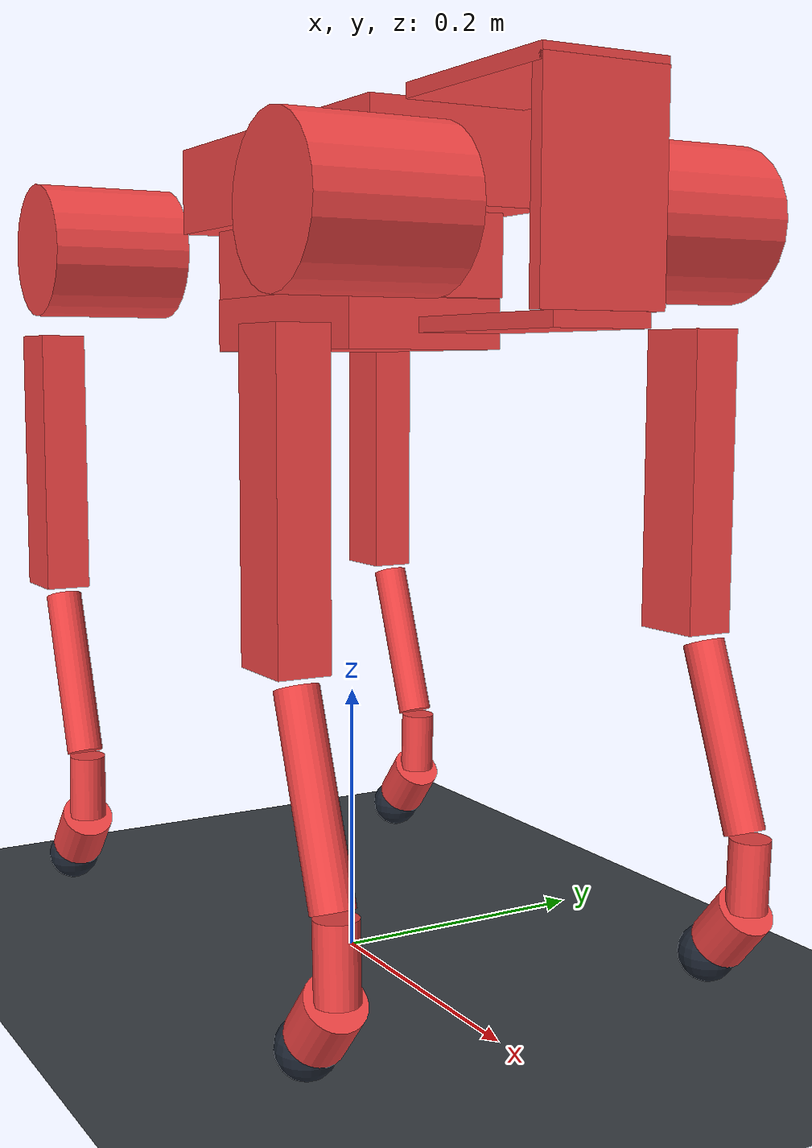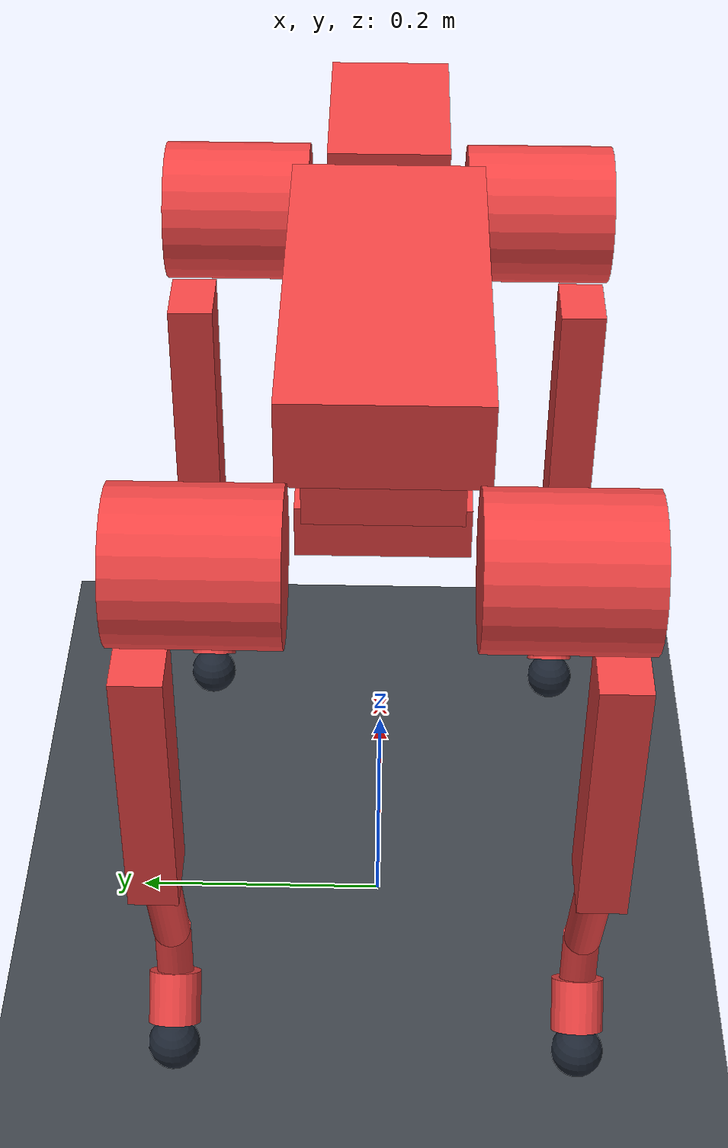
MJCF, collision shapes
<mujoco model="GO 2026_4_12">
  <compiler angle="radian" meshdir="meshes/" inertiafromgeom="auto" inertiagrouprange="3 3" />
  <!-- 高 kv(30/15) 在默认 Euler 积分 + 2 ms 步长下会数值发散(执行器力矩在 ±60 之间每步翻转)。
       用 implicitfast 隐式处理阻尼,即可在 2 ms 步长下稳定运行。等效替代方案: dt <= 1e-4。 -->
  <option integrator="implicitfast" timestep="0.002" />
  <asset>
    <mesh name="trunk" file="trunk.STL" />
    <mesh name="d435" file="d435.stl" />
    <mesh name="FL_hip" file="FL_hip.STL" />
    <mesh name="FL_thigh" file="FL_thigh.STL" />
    <mesh name="FL_calf" file="FL_calf.STL" />
    <mesh name="FR_hip" file="FR_hip.STL" />
    <mesh name="FR_thigh" file="FR_thigh.STL" />
    <mesh name="FR_calf" file="FR_calf.STL" />
    <mesh name="RR_hip" file="RR_hip.STL" />
    <mesh name="RR_thigh" file="RR_thigh.STL" />
    <mesh name="RR_calf" file="RR_calf.STL" />
    <mesh name="RL_hip" file="RL_hip.STL" />
    <mesh name="RL_thigh" file="RL_thigh.STL" />
    <mesh name="RL_calf" file="RL_calf.STL" />
    <material name="base_mat" rgba="0.502 0.502 0.502 1" specular="0" />
    <material name="trunk_mat" rgba="0.7529 0.7529 0.7529 1" specular="0" />
    <material name="imu_link_mat" rgba="0.8 0 0 1" specular="0" />
    <material name="d435_link_mat" rgba="0.15 0.15 0.15 1" specular="0" />
    <material name="FL_hip_mat" rgba="0.7529 0.7529 0.7529 1" specular="0" />
    <material name="FL_thigh_mat" rgba="0.7529 0.7529 0.7529 1" specular="0" />
    <material name="FL_calf_mat" rgba="0.7529 0.7529 0.7529 1" specular="0" />
    <material name="FL_foot_mat" rgba="0.1177 0.149 0.2 1" specular="0" />
    <material name="FR_hip_mat" rgba="0.7529 0.7529 0.7529 1" specular="0" />
    <material name="FR_thigh_mat" rgba="0.7529 0.7529 0.7529 1" specular="0" />
    <material name="FR_calf_mat" rgba="0.7529 0.7529 0.7529 1" specular="0" />
    <material name="FR_foot_mat" rgba="0.1177 0.149 0.2 1" specular="0" />
    <material name="RR_hip_mat" rgba="0.7529 0.7529 0.7529 1" specular="0" />
    <material name="RR_thigh_mat" rgba="0.7529 0.7529 0.7529 1" specular="0" />
    <material name="RR_calf_mat" rgba="0.7529 0.7529 0.7529 1" specular="0" />
    <material name="RR_foot_mat" rgba="0.1177 0.149 0.2 1" specular="0" />
    <material name="RL_hip_mat" rgba="0.7529 0.7529 0.7529 1" specular="0" />
    <material name="RL_thigh_mat" rgba="0.7529 0.7529 0.7529 1" specular="0" />
    <material name="RL_calf_mat" rgba="0.7529 0.7529 0.7529 1" specular="0" />
    <material name="RL_foot_mat" rgba="0.1177 0.149 0.2 1" specular="0" />
    <!-- 场景: 天空盒 + 地面棋盘格纹理与材质(均为内置程序化纹理, 不依赖文件) -->
    <texture name="skybox" type="skybox" builtin="gradient" width="100" height="100" rgb1="0.4 0.6 0.8" rgb2="0.2 0.2 0.2" />
    <texture name="groundplane_tex" type="2d" builtin="checker" width="512" height="512" rgb1="0.28 0.3 0.33" rgb2="0.2 0.22 0.24" mark="random" markrgb="0.8 0.8 0.8" />
    <material name="groundplane_mat" texture="groundplane_tex" texuniform="true" texrepeat="4 4" reflectance="0.2" />
  </asset>

  <worldbody>
    <!-- 地面(无限大平面, z=0) -->
    <geom name="floor" type="plane" pos="0 0 0" size="0 0 0.05" material="groundplane_mat" condim="3" friction="1 0.005 0.0001" />
    <!-- 光照: 主平行光带阴影 + 补光 -->
    <light name="key_light" directional="true" pos="0 0 3" dir="-0.3 0.2 -1" diffuse="0.8 0.8 0.8" specular="0.2 0.2 0.2" castshadow="true" />
    <light name="fill_light" directional="true" pos="0 0 3" dir="0.4 -0.3 -1" diffuse="0.3 0.3 0.3" specular="0.1 0.1 0.1" castshadow="false" />
    <body name="base" pos="0 0 0.6">
      <freejoint/>
      <!-- Estimated inertia from collisions; density 1000 kg/m3. -->
      <geom pos="0 0 0" group="1" contype="0" conaffinity="0" mass="0" material="base_mat" type="box" size="0.0005 0.0005 0.0005" />
      <geom pos="0 0 0" rgba="0.9373 0.2667 0.2667 1" group="3" contype="1" conaffinity="1" density="1000" type="box" size="0.0000005 0.0000005 0.0000005" />
      <body name="trunk" pos="0 0 0">
        <inertial pos="-0.013095 -0.00005 -0.074252" mass="5.7042" fullinertia="0.0092853 0.0076386 0.012703 -0.0000026 0.0000017 -0.0000276"/>
        <geom pos="0 0 0" group="1" contype="0" conaffinity="0" mass="0" material="trunk_mat" type="mesh" mesh="trunk" />
        <geom pos="0 0 -0.02" rgba="0.9373 0.2667 0.2667 1" group="3" contype="1" conaffinity="1" type="box" size="0.15 0.07 0.0325" />
        <geom pos="0 0 -0.08" rgba="0.9373 0.2667 0.2667 1" group="3" contype="1" conaffinity="1" type="box" size="0.115 0.055 0.03" />
        <geom pos="0 0 -0.125" rgba="0.9373 0.2667 0.2667 1" group="3" contype="1" conaffinity="1" type="box" size="0.105 0.06 0.02" />
        <geom pos="0.225 0 -0.13" rgba="0.9373 0.2667 0.2667 1" group="3" contype="1" conaffinity="1" type="box" size="0.0725 0.035 0.005" />
        <geom pos="0.225 0 0.015" rgba="0.9373 0.2667 0.2667 1" group="3" contype="1" conaffinity="1" type="box" size="0.0725 0.045 0.005" />
        <geom pos="0.293 0 -0.055" rgba="0.9373 0.2667 0.2667 1" group="3" contype="1" conaffinity="1" type="box" size="0.005 0.045 0.07" />
        <body name="imu_link" pos="0 0 0">
          <inertial pos="0 0 0" mass="0.001" diaginertia="0.0001 0.0001 0.0001"/>
          <geom pos="0 0 0" group="1" contype="0" conaffinity="0" material="imu_link_mat" type="box" size="0.0005 0.0005 0.0005" />
        </body>
        <body name="d435_link" pos="0.225 0 0.028">
          <inertial pos="0 0 -0.0125" mass="0.072" diaginertia="0.00002 0.00006 0.00006"/>
          <geom pos="0.07 0 -0.08" quat="0.3155095 0.6328142 0.6328142 0.3155095" group="1" contype="0" conaffinity="0" material="d435_link_mat" type="mesh" mesh="d435" />
        </body>
        <body name="FL_hip" pos="0.1566 0.060001 -0.06425">
          <joint name="FL_hip_joint" type="hinge" axis="1 0 0" damping="0.15" frictionloss="0"/>
          <inertial pos="0.05138 0.014784 0.0000566" mass="0.60559" fullinertia="0.0003742 0.0006493 0.0003415 -0.0000088 0.000001 -0.0000001"/>
          <geom pos="0 0 0" group="1" contype="0" conaffinity="0" mass="0" material="FL_hip_mat" type="mesh" mesh="FL_hip" />
          <geom pos="0.058 0.055 0" quat="0.7071068 0.7071068 0 0" rgba="0.9373 0.2667 0.2667 1" group="3" contype="1" conaffinity="1" type="cylinder" size="0.052 0.055" />
          <body name="FL_thigh" pos="0.056 0.0336 0" quat="0.7071055 0 0 0.7071081">
            <joint name="FL_thigh_joint" type="hinge" axis="1 0 0" damping="0.15" frictionloss="0"/>
            <inertial pos="0.041449 0.004453 -0.021946" mass="0.91168" fullinertia="0.0018577 0.0013983 0.0005179 0 -0.0000002 0.0000051"/>
            <geom pos="0 0 0" group="1" contype="0" conaffinity="0" mass="0" material="FL_thigh_mat" type="mesh" mesh="FL_thigh" />
            <geom pos="0.06 0.015 -0.17" rgba="0.9373 0.2667 0.2667 1" group="3" contype="1" conaffinity="1" type="box" size="0.0175 0.025 0.1025" />
            <body name="FL_calf" pos="0.0618 0 -0.25">
              <joint name="FL_calf_joint" type="hinge" axis="1 0 0" damping="0.15" frictionloss="0"/>
              <inertial pos="0.0000772 -0.024754 -0.14833" mass="0.24861" fullinertia="0.000929 0.0008561 0.0000889 0 0 -0.0002168"/>
              <geom pos="0 0 0" group="1" contype="0" conaffinity="0" mass="0" material="FL_calf_mat" type="mesh" mesh="FL_calf" />
              <geom pos="0 -0.025 -0.09" quat="0.9843036 -0.1764835 0 0" rgba="0.9373 0.2667 0.2667 1" group="3" contype="1" conaffinity="1" type="cylinder" size="0.014 0.065" />
              <geom pos="0 -0.052 -0.178" quat="0.9998507 0.0172779 0 0" rgba="0.9373 0.2667 0.2667 1" group="3" contype="1" conaffinity="1" type="cylinder" size="0.014 0.025" />
              <geom pos="0 -0.038 -0.218" quat="0.9396926 0.3420201 0 0" rgba="0.9373 0.2667 0.2667 1" group="3" contype="1" conaffinity="1" type="cylinder" size="0.02 0.02" />
              <body name="FL_foot" pos="0 -0.013803 -0.24433">
                <inertial pos="0 0 0" mass="0.1" diaginertia="0.000016 0.000016 0.000016"/>
                <geom pos="0 0 0" group="1" contype="0" conaffinity="0" mass="0" material="FL_foot_mat" type="sphere" size="0.02" />
                <geom pos="0 0 0" rgba="0.9373 0.2667 0.2667 1" group="3" contype="1" conaffinity="1" type="sphere" size="0.02" />
              </body>
            </body>
          </body>
        </body>
        <body name="FR_hip" pos="0.1566 -0.059999 -0.06425">
          <joint name="FR_hip_joint" type="hinge" axis="1 0 0" damping="0.15" frictionloss="0"/>
          <inertial pos="0.05138 -0.014784 -0.0000566" mass="0.60559" fullinertia="0.0003742 0.0006493 0.0003415 0.0000088 -0.000001 -0.0000001"/>
          <geom pos="0 0 0" group="1" contype="0" conaffinity="0" mass="0" material="FR_hip_mat" type="mesh" mesh="FR_hip" />
          <geom pos="0.058 -0.055 0" quat="0.7071068 0.7071068 0 0" rgba="0.9373 0.2667 0.2667 1" group="3" contype="1" conaffinity="1" type="cylinder" size="0.052 0.055" />
          <body name="FR_thigh" pos="0.056 -0.0336 0" quat="0.7071055 0 0 -0.7071081">
            <joint name="FR_thigh_joint" type="hinge" axis="1 0 0" damping="0.15" frictionloss="0"/>
            <inertial pos="0.04152 -0.0043781 -0.022024" mass="0.91491" fullinertia="0.0018577 0.0013991 0.0005172 -0.0000001 -0.0000002 -0.0000031"/>
            <geom pos="0 0 0" group="1" contype="0" conaffinity="0" mass="0" material="FR_thigh_mat" type="mesh" mesh="FR_thigh" />
            <geom pos="0.06 -0.015 -0.17" rgba="0.9373 0.2667 0.2667 1" group="3" contype="1" conaffinity="1" type="box" size="0.0175 0.025 0.1025" />
            <body name="FR_calf" pos="0.0618 0 -0.25">
              <joint name="FR_calf_joint" type="hinge" axis="1 0 0" damping="0.15" frictionloss="0"/>
              <inertial pos="-0.0000772 0.024754 -0.14833" mass="0.24861" fullinertia="0.000929 0.0008561 0.0000889 0 0 0.0002168"/>
              <geom pos="0 0 0" group="1" contype="0" conaffinity="0" mass="0" material="FR_calf_mat" type="mesh" mesh="FR_calf" />
              <geom pos="0 0.025 -0.09" quat="0.9843036 0.1764835 0 0" rgba="0.9373 0.2667 0.2667 1" group="3" contype="1" conaffinity="1" type="cylinder" size="0.014 0.065" />
              <geom pos="0 0.052 -0.178" quat="0.9998507 0.0172779 0 0" rgba="0.9373 0.2667 0.2667 1" group="3" contype="1" conaffinity="1" type="cylinder" size="0.014 0.025" />
              <geom pos="0 0.038 -0.218" quat="0.9396926 -0.3420201 0 0" rgba="0.9373 0.2667 0.2667 1" group="3" contype="1" conaffinity="1" type="cylinder" size="0.02 0.02" />
              <body name="FR_foot" pos="0 0.013803 -0.24433">
                <inertial pos="0 0 0" mass="0.1" diaginertia="0.000016 0.000016 0.000016"/>
                <geom pos="0 0 0" group="1" contype="0" conaffinity="0" mass="0" material="FR_foot_mat" type="sphere" size="0.02" />
                <geom pos="0 0 0" rgba="0.9373 0.2667 0.2667 1" group="3" contype="1" conaffinity="1" type="sphere" size="0.02" />
              </body>
            </body>
          </body>
        </body>
        <body name="RR_hip" pos="-0.1566 -0.059999 -0.06425" quat="-0.0000037 0 0 -1">
          <joint name="RR_hip_joint" type="hinge" axis="1 0 0" damping="0.15" frictionloss="0"/>
          <inertial pos="0.05138 0.014784 0.0000566" mass="0.60559" fullinertia="0.0003742 0.0006493 0.0003415 -0.0000088 0.000001 -0.0000001"/>
          <geom pos="0 0 0" group="1" contype="0" conaffinity="0" mass="0" material="RR_hip_mat" type="mesh" mesh="RR_hip" />
          <geom pos="0.058 0.055 0" quat="0.7071068 0.7071068 0 0" rgba="0.9373 0.2667 0.2667 1" group="3" contype="1" conaffinity="1" type="cylinder" size="0.052 0.055" />
          <body name="RR_thigh" pos="0.056 0.0336 0" quat="0.7071055 0 0 0.7071081">
            <joint name="RR_thigh_joint" type="hinge" axis="1 0 0" damping="0.15" frictionloss="0"/>
            <inertial pos="0.04152 -0.0043784 -0.022024" mass="0.91491" fullinertia="0.0018577 0.0013991 0.0005172 -0.0000001 -0.0000002 -0.0000031"/>
            <geom pos="0 0 0" group="1" contype="0" conaffinity="0" mass="0" material="RR_thigh_mat" type="mesh" mesh="RR_thigh" />
            <geom pos="0.06 -0.015 -0.17" rgba="0.9373 0.2667 0.2667 1" group="3" contype="1" conaffinity="1" type="box" size="0.0175 0.025 0.1025" />
            <body name="RR_calf" pos="0.0618 0 -0.25">
              <joint name="RR_calf_joint" type="hinge" axis="1 0 0" damping="0.15" frictionloss="0"/>
              <inertial pos="-0.0000772 0.024754 -0.14833" mass="0.24861" fullinertia="0.000929 0.0008561 0.0000889 0 0 0.0002168"/>
              <geom pos="0 0 0" group="1" contype="0" conaffinity="0" mass="0" material="RR_calf_mat" type="mesh" mesh="RR_calf" />
              <geom pos="0 0.025 -0.09" quat="0.9843036 0.1764835 0 0" rgba="0.9373 0.2667 0.2667 1" group="3" contype="1" conaffinity="1" type="cylinder" size="0.014 0.065" />
              <geom pos="0 0.052 -0.178" quat="0.9998507 -0.0172779 0 0" rgba="0.9373 0.2667 0.2667 1" group="3" contype="1" conaffinity="1" type="cylinder" size="0.014 0.025" />
              <geom pos="0 0.038 -0.218" quat="0.9396926 -0.3420201 0 0" rgba="0.9373 0.2667 0.2667 1" group="3" contype="1" conaffinity="1" type="cylinder" size="0.02 0.02" />
              <body name="RR_foot" pos="0 0.013803 -0.24433">
                <inertial pos="0 0 0" mass="0.1" diaginertia="0.000016 0.000016 0.000016"/>
                <geom pos="0 0 0" group="1" contype="0" conaffinity="0" mass="0" material="RR_foot_mat" type="sphere" size="0.02" />
                <geom pos="0 0 0" rgba="0.9373 0.2667 0.2667 1" group="3" contype="1" conaffinity="1" type="sphere" size="0.02" />
              </body>
            </body>
          </body>
        </body>
        <body name="RL_hip" pos="-0.1566 0.060001 -0.06425" quat="-0.0000037 0 0 -1">
          <joint name="RL_hip_joint" type="hinge" axis="1 0 0" damping="0.15" frictionloss="0"/>
          <inertial pos="0.05138 -0.014784 -0.0000566" mass="0.60559" fullinertia="0.0003742 0.0006493 0.0003415 0.0000088 -0.000001 -0.0000001"/>
          <geom pos="0 0 0" group="1" contype="0" conaffinity="0" mass="0" material="RL_hip_mat" type="mesh" mesh="RL_hip" />
          <geom pos="0.058 -0.055 0" quat="0.7071068 0.7071068 0 0" rgba="0.9373 0.2667 0.2667 1" group="3" contype="1" conaffinity="1" type="cylinder" size="0.052 0.055" />
          <body name="RL_thigh" pos="0.056 -0.0336 0" quat="0.7071055 0 0 -0.7071081">
            <joint name="RL_thigh_joint" type="hinge" axis="1 0 0" damping="0.15" frictionloss="0"/>
            <inertial pos="0.041449 0.0044527 -0.021947" mass="0.91168" fullinertia="0.0018577 0.0013983 0.0005179 0 -0.0000002 0.0000051"/>
            <geom pos="0 0 0" group="1" contype="0" conaffinity="0" mass="0" material="RL_thigh_mat" type="mesh" mesh="RL_thigh" />
            <geom pos="0.06 0.015 -0.17" rgba="0.9373 0.2667 0.2667 1" group="3" contype="1" conaffinity="1" type="box" size="0.0175 0.025 0.1025" />
            <body name="RL_calf" pos="0.0618 0 -0.25">
              <joint name="RL_calf_joint" type="hinge" axis="1 0 0" damping="0.15" frictionloss="0"/>
              <inertial pos="0.0000772 -0.024754 -0.14833" mass="0.24861" fullinertia="0.000929 0.0008561 0.0000889 0 0 -0.0002168"/>
              <geom pos="0 0 0" group="1" contype="0" conaffinity="0" mass="0" material="RL_calf_mat" type="mesh" mesh="RL_calf" />
              <geom pos="0 -0.025 -0.09" quat="0.9843036 -0.1764835 0 0" rgba="0.9373 0.2667 0.2667 1" group="3" contype="1" conaffinity="1" type="cylinder" size="0.014 0.065" />
              <geom pos="0 -0.052 -0.178" quat="0.9998507 0.0172779 0 0" rgba="0.9373 0.2667 0.2667 1" group="3" contype="1" conaffinity="1" type="cylinder" size="0.014 0.025" />
              <geom pos="0 -0.038 -0.218" quat="0.9396926 0.3420201 0 0" rgba="0.9373 0.2667 0.2667 1" group="3" contype="1" conaffinity="1" type="cylinder" size="0.02 0.02" />
              <body name="RL_foot" pos="0 -0.013803 -0.24433">
                <inertial pos="0 0 0" mass="0.1" diaginertia="0.000016 0.000016 0.000016"/>
                <geom pos="0 0 0" group="1" contype="0" conaffinity="0" mass="0" material="RL_foot_mat" type="sphere" size="0.02" />
                <geom pos="0 0 0" rgba="0.9373 0.2667 0.2667 1" group="3" contype="1" conaffinity="1" type="sphere" size="0.02" />
              </body>
            </body>
          </body>
        </body>
      </body>
    </body>
  </worldbody>
  <actuator>
    <position name="FL_hip_joint_servo" joint="FL_hip_joint" kp="100" kv="30" forcelimited="true" forcerange="-60 60" />
    <position name="FL_thigh_joint_servo" joint="FL_thigh_joint" kp="60" kv="15" forcelimited="true" forcerange="-60 60" />
    <position name="FL_calf_joint_servo" joint="FL_calf_joint" kp="60" kv="15" forcelimited="true" forcerange="-60 60" />
    <position name="FR_hip_joint_servo" joint="FR_hip_joint" kp="100" kv="30" forcelimited="true" forcerange="-60 60" />
    <position name="FR_thigh_joint_servo" joint="FR_thigh_joint" kp="60" kv="15" forcelimited="true" forcerange="-60 60" />
    <position name="FR_calf_joint_servo" joint="FR_calf_joint" kp="60" kv="15" forcelimited="true" forcerange="-60 60" />
    <position name="RR_hip_joint_servo" joint="RR_hip_joint" kp="100" kv="30" forcelimited="true" forcerange="-60 60" />
    <position name="RR_thigh_joint_servo" joint="RR_thigh_joint" kp="60" kv="15" forcelimited="true" forcerange="-60 60" />
    <position name="RR_calf_joint_servo" joint="RR_calf_joint" kp="60" kv="15" forcelimited="true" forcerange="-60 60" />
    <position name="RL_hip_joint_servo" joint="RL_hip_joint" kp="100" kv="30" forcelimited="true" forcerange="-60 60" />
    <position name="RL_thigh_joint_servo" joint="RL_thigh_joint" kp="60" kv="15" forcelimited="true" forcerange="-60 60" />
    <position name="RL_calf_joint_servo" joint="RL_calf_joint" kp="60" kv="15" forcelimited="true" forcerange="-60 60" />
  </actuator>
  <visual>
    <headlight ambient="0.3 0.3 0.3" diffuse="0.6 0.6 0.6" specular="0 0 0" />
    <map znear="0.05" zfar="50" />
    <quality shadowsize="4096" />
  </visual>
</mujoco>
